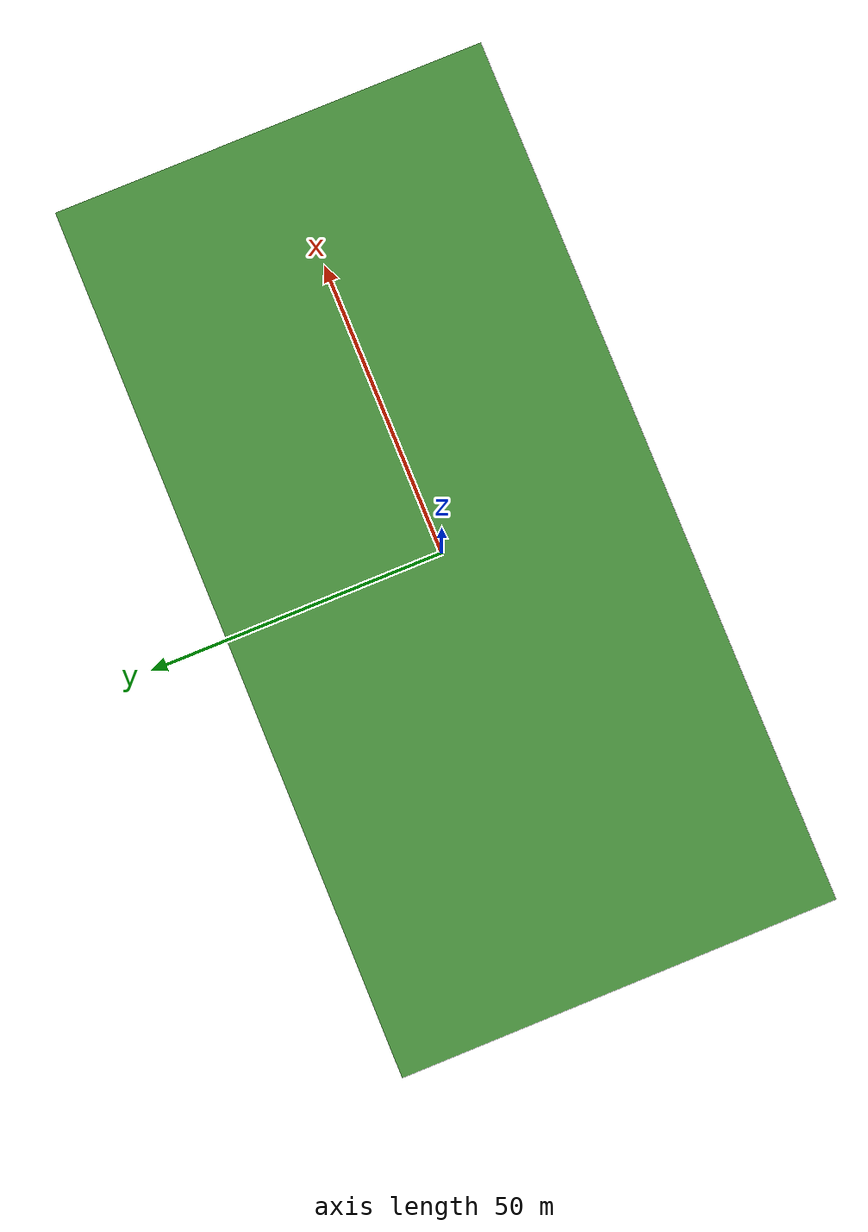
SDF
<?xml version='1.0'?>
<sdf version='1.6'>
  <model name='GrassFloor'>
	<static>1</static>
    <link name='link_0'>
      <inertial>
        <mass>1000</mass>
        <inertia>
          <ixx>346595</ixx>
          <ixy>0</ixy>
          <ixz>0</ixz>
          <iyy>1.39755e+06</iyy>
          <iyz>0</iyz>
          <izz>1.74415e+06</izz>
        </inertia>
        <pose frame=''>0 0 0 0 -0 0</pose>
      </inertial>
      <pose frame=''>-3.5e-05 -3.7e-05 -0 0 -0 0</pose>
      <gravity>0</gravity>
      <self_collide>0</self_collide>
      <kinematic>0</kinematic>
      <enable_wind>0</enable_wind>
      <visual name='visual'>
        <pose frame=''>0 0 0 0 -0 0</pose>
        <geometry>
          <box>
            <size>149.019 74.211 0.068473</size>
          </box>
        </geometry>
        <material>
          <lighting>1</lighting>
          <script>
            <uri>file://media/materials/scripts/gazebo.material</uri>
            <name>Gazebo/Grass</name>
          </script>
          <shader type='vertex'>
            <normal_map>__default__</normal_map>
          </shader>
          <ambient>0.3 0.3 0.3 1</ambient>
          <diffuse>0.7 0.7 0.7 1</diffuse>
          <specular>0.01 0.01 0.01 1</specular>
          <emissive>0 0 0 1</emissive>
        </material>
        <transparency>0</transparency>
        <cast_shadows>1</cast_shadows>
      </visual>
        <geometry>
          <box>
            <size>149.019 74.211 0.068473</size>
          </box>
        </geometry>
</link>
  </model>
</sdf>
